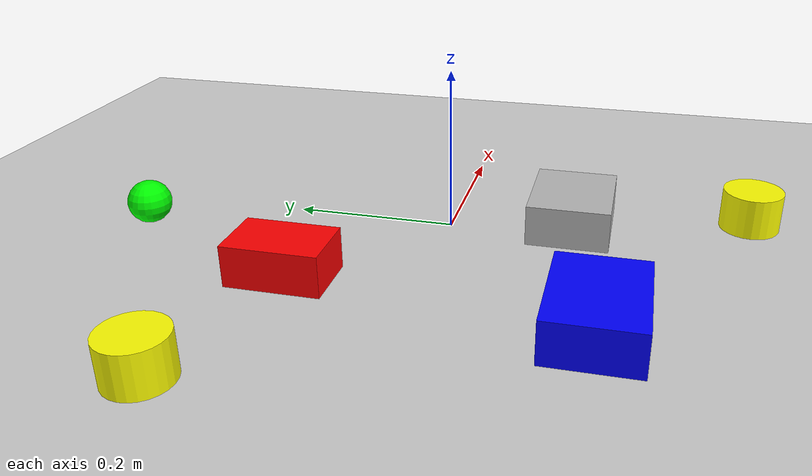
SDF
<sdf version="1.7">
 <world name="default">
  <light name="sun" type="directional">
   <pose>0 0 10 0 -0 0</pose>
   <diffuse>0.8 0.8 0.8 1</diffuse>
   <specular>0.2 0.2 0.2 1</specular>
   <attenuation>
    <range>1000</range>
    <constant>0.9</constant>
    <linear>0.01</linear>
    <quadratic>0.001</quadratic>
   </attenuation>
   <direction>-0.5 0.1 -0.9</direction>
   <spot><inner_angle>0</inner_angle><outer_angle>0</outer_angle><falloff>0</falloff></spot>
  </light>
  <model name="ground_plane">
   <static>1</static>
   <link name="link">
    <collision name="collision">
     <geometry><plane><normal>0 0 1</normal><size>100 100</size></plane></geometry>
     <surface><friction><ode><mu>100</mu><mu2>50</mu2></ode></friction></surface>
    </collision>
    <visual name="visual">
     <cast_shadows>0</cast_shadows>
     <geometry><plane><normal>0 0 1</normal><size>100 100</size></plane></geometry>
     <material>
      <script><uri>file://media/materials/scripts/gazebo.material</uri><name>Gazebo/Grey</name></script>
     </material>
    </visual>
   </link>
  </model>
  <light name="brighter_sun" type="directional">
   <diffuse>1 1 1 1</diffuse>
   <specular>0.2 0.2 0.2 1</specular>
   <direction>-0.5 0.5 -1</direction>
   <attenuation>
    <range>100</range>
    <constant>0.9</constant>
    <linear>0.01</linear>
    <quadratic>0.001</quadratic>
   </attenuation>
   <spot><inner_angle>0</inner_angle><outer_angle>0</outer_angle><falloff>0</falloff></spot>
  </light>
  <gravity>0 0 -9.8</gravity>
  <magnetic_field>6e-06 2.3e-05 -4.2e-05</magnetic_field>
  <atmosphere type="adiabatic"/>
  <physics type="ode">
   <max_step_size>0.001</max_step_size>
   <real_time_factor>1</real_time_factor>
   <real_time_update_rate>1000</real_time_update_rate>
  </physics>
  <scene><ambient>0.4 0.4 0.4 1</ambient><background>0.7 0.7 0.7 1</background><shadows>1</shadows></scene>
  <spherical_coordinates>
   <surface_model>EARTH_WGS84</surface_model>
   <latitude_deg>0</latitude_deg>
   <longitude_deg>0</longitude_deg>
   <elevation>0</elevation>
   <heading_deg>0</heading_deg>
  </spherical_coordinates>
  <model name="parcel">
   <static>0</static>
   <link name="link">
    <inertial>
     <mass>1</mass>
     <inertia>
      <ixx>0.166667</ixx>
      <ixy>0</ixy>
      <ixz>0</ixz>
      <iyy>0.166667</iyy>
      <iyz>0</iyz>
      <izz>0.166667</izz>
     </inertia>
    </inertial>
    <visual name="visual"><geometry><box><size>0.121529 0.1 0.05</size></box></geometry></visual>
    <collision name="collision">
     <geometry><box><size>0.121529 0.1 0.05</size></box></geometry>
     <surface>
      <friction><ode><mu>1</mu><mu2>1</mu2></ode></friction>
      <contact>
       <ode>
        <soft_cfm>0</soft_cfm>
        <soft_erp>0.2</soft_erp>
        <kp>1e+13</kp>
        <kd>1</kd>
        <max_vel>0.01</max_vel>
        <min_depth>0</min_depth>
       </ode>
      </contact>
     </surface>
    </collision>
   </link>
   <pose>0.029257 -0.14819 0.025 0 0 -1.4e-05</pose>
  </model>
  <model name="parcel_0">
   <static>0</static>
   <link name="link">
    <inertial>
     <mass>1</mass>
     <inertia>
      <ixx>0.166667</ixx>
      <ixy>0</ixy>
      <ixz>0</ixz>
      <iyy>0.166667</iyy>
      <iyz>0</iyz>
      <izz>0.166667</izz>
     </inertia>
    </inertial>
    <visual name="visual">
     <geometry><box><size>0.073549 0.112956 0.05</size></box></geometry>
     <material><ambient>1 0 0 1</ambient><diffuse>1 0 0 1</diffuse></material>
    </visual>
    <collision name="collision">
     <geometry><box><size>0.073549 0.112956 0.05</size></box></geometry>
     <surface>
      <friction><ode><mu>1</mu><mu2>1</mu2></ode></friction>
      <contact>
       <ode>
        <soft_cfm>0</soft_cfm>
        <soft_erp>0.2</soft_erp>
        <kp>1e+13</kp>
        <kd>1</kd>
        <max_vel>0.01</max_vel>
        <min_depth>0</min_depth>
       </ode>
      </contact>
     </surface>
    </collision>
   </link>
   <pose>-0.170182 0.153297 0.025 6e-06 5e-06 -1.6e-05</pose>
  </model>
  <model name="parcel_1">
   <static>0</static>
   <link name="link">
    <inertial>
     <mass>1</mass>
     <inertia>
      <ixx>0.166667</ixx>
      <ixy>0</ixy>
      <ixz>0</ixz>
      <iyy>0.166667</iyy>
      <iyz>0</iyz>
      <izz>0.166667</izz>
     </inertia>
    </inertial>
    <visual name="visual">
     <geometry><box><size>0.139413 0.104253 0.05</size></box></geometry>
     <material><ambient>0 0 1 1</ambient><diffuse>0 0 1 1</diffuse></material>
    </visual>
    <collision name="collision">
     <geometry><box><size>0.139413 0.104253 0.05</size></box></geometry>
     <surface>
      <friction><ode><mu>1</mu><mu2>1</mu2></ode></friction>
      <contact>
       <ode>
        <soft_cfm>0</soft_cfm>
        <soft_erp>0.2</soft_erp>
        <kp>1e+13</kp>
        <kd>1</kd>
        <max_vel>0.01</max_vel>
        <min_depth>0</min_depth>
       </ode>
      </contact>
     </surface>
    </collision>
   </link>
   <pose>-0.203736 -0.196723 0.025 2e-06 2e-06 -1e-06</pose>
  </model>
  <model name="unit_cylinder">
   <pose>-0.374942 0.206081 0.024995 0 0 -1.4e-05</pose>
   <link name="link">
    <inertial>
     <mass>1</mass>
     <inertia><ixx>0.145833</ixx><ixy>0</ixy><ixz>0</ixz><iyy>0.145833</iyy><iyz>0</iyz><izz>0.125</izz></inertia>
    </inertial>
    <collision name="collision">
     <geometry><cylinder><radius>0.0364446</radius><length>0.05</length></cylinder></geometry>
    </collision>
    <visual name="visual">
     <geometry><cylinder><radius>0.0364446</radius><length>0.05</length></cylinder></geometry>
     <material><ambient>1 1 0 1</ambient><diffuse>1 1 0 1</diffuse></material>
    </visual>
   </link>
  </model>
  <model name="unit_cylinder_clone">
   <pose>0.080485 -0.366049 0.024995 0 0 -1.4e-05</pose>
   <link name="link">
    <inertial>
     <mass>1</mass>
     <inertia><ixx>0.145833</ixx><ixy>0</ixy><ixz>0</ixz><iyy>0.145833</iyy><iyz>0</iyz><izz>0.125</izz></inertia>
    </inertial>
    <collision name="collision">
     <geometry><cylinder><radius>0.0364446</radius><length>0.05</length></cylinder></geometry>
    </collision>
    <visual name="visual">
     <geometry><cylinder><radius>0.0364446</radius><length>0.05</length></cylinder></geometry>
     <material><ambient>1 1 0 1</ambient><diffuse>1 1 0 1</diffuse></material>
    </visual>
   </link>
  </model>
  <model name="unit_sphere">
   <pose>-0.074096 0.375187 0.027006 0 -0 0</pose>
   <link name="link">
    <inertial>
     <mass>1</mass>
     <inertia><ixx>0.1</ixx><ixy>0</ixy><ixz>0</ixz><iyy>0.1</iyy><iyz>0</iyz><izz>0.1</izz></inertia>
    </inertial>
    <collision name="collision"><geometry><sphere><radius>0.027006</radius></sphere></geometry></collision>
    <visual name="visual">
     <geometry><sphere><radius>0.027006</radius></sphere></geometry>
     <material><ambient>0 1 0 1</ambient><diffuse>0 1 0 1</diffuse></material>
    </visual>
   </link>
  </model>
 </world>
</sdf>
